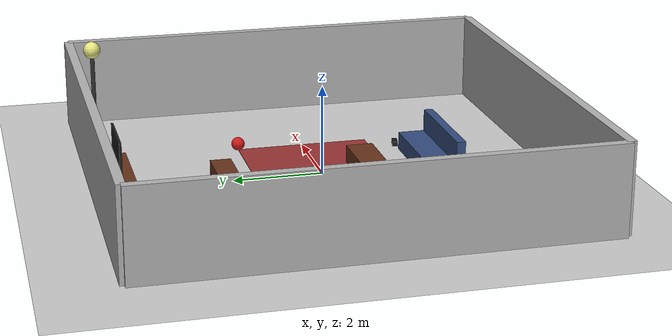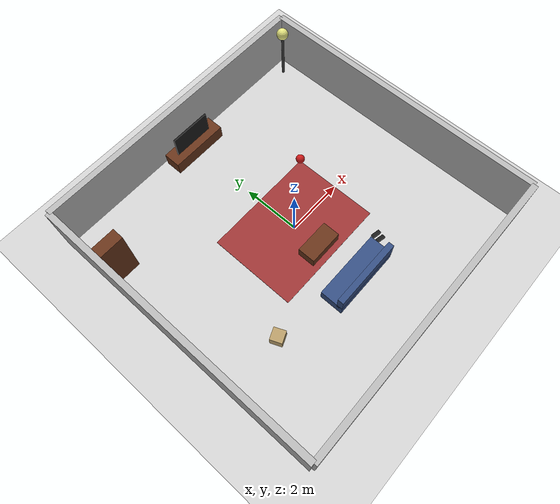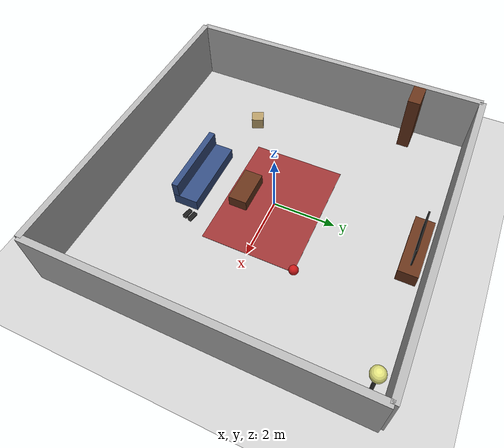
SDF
<?xml version="1.0" ?>
<sdf version="1.7">
  <world name="primitive_living_room">
    <plugin filename="gz-sim-physics-system" name="gz::sim::systems::Physics"></plugin>
    <plugin filename="gz-sim-user-commands-system" name="gz::sim::systems::UserCommands"></plugin>
    <plugin filename="gz-sim-scene-broadcaster-system" name="gz::sim::systems::SceneBroadcaster"></plugin>
    <plugin filename="gz-sim-sensors-system" name="gz::sim::systems::Sensors">
      <render_engine>ogre2</render_engine>
    </plugin>
    <scene>
      <ambient>1.0 1.0 1.0 1</ambient>
      <background>0.5 0.5 0.5 1</background>
      <shadows>true</shadows>
    </scene>

    <light type="directional" name="sun">
      <cast_shadows>true</cast_shadows>
      <pose>0 0 10 0 0 0</pose>
      <diffuse>0.8 0.8 0.8 1</diffuse>
      <specular>0.2 0.2 0.2 1</specular>
      <direction>-0.5 0.1 -0.9</direction>
    </light>

    <model name="ground_plane">
      <static>true</static>
      <link name="link">
        <collision name="collision"><geometry><plane><normal>0 0 1</normal><size>20 20</size></plane></geometry></collision>
        <visual name="visual">
          <geometry><plane><normal>0 0 1</normal><size>20 20</size></plane></geometry>
          <material><ambient>0.8 0.8 0.8 1</ambient><diffuse>0.8 0.8 0.8 1</diffuse></material>
        </visual>
      </link>
    </model>

    <model name="walls">
      <static>true</static>
      <link name="link">
        <collision name="n_col"><pose>0 5 1 0 0 0</pose><geometry><box><size>10 0.2 2</size></box></geometry></collision>
        <visual name="n_vis"><pose>0 5 1 0 0 0</pose><geometry><box><size>10 0.2 2</size></box></geometry><material><ambient>0.7 0.7 0.7 1</ambient><diffuse>0.7 0.7 0.7 1</diffuse></material></visual>
        <collision name="s_col"><pose>0 -5 1 0 0 0</pose><geometry><box><size>10 0.2 2</size></box></geometry></collision>
        <visual name="s_vis"><pose>0 -5 1 0 0 0</pose><geometry><box><size>10 0.2 2</size></box></geometry><material><ambient>0.7 0.7 0.7 1</ambient><diffuse>0.7 0.7 0.7 1</diffuse></material></visual>
        <collision name="e_col"><pose>5 0 1 0 0 0</pose><geometry><box><size>0.2 10 2</size></box></geometry></collision>
        <visual name="e_vis"><pose>5 0 1 0 0 0</pose><geometry><box><size>0.2 10 2</size></box></geometry><material><ambient>0.7 0.7 0.7 1</ambient><diffuse>0.7 0.7 0.7 1</diffuse></material></visual>
        <collision name="w_col"><pose>-5 0 1 0 0 0</pose><geometry><box><size>0.2 10 2</size></box></geometry></collision>
        <visual name="w_vis"><pose>-5 0 1 0 0 0</pose><geometry><box><size>0.2 10 2</size></box></geometry><material><ambient>0.7 0.7 0.7 1</ambient><diffuse>0.7 0.7 0.7 1</diffuse></material></visual>
      </link>
    </model>

    <model name="rug">
      <static>true</static>
      <pose>0 0 0.005 0 0 0</pose>
      <link name="link">
        <visual name="visual">
          <geometry><box><size>4 3 0.01</size></box></geometry>
          <material><ambient>0.6 0.2 0.2 1</ambient><diffuse>0.6 0.2 0.2 1</diffuse></material>
        </visual>
      </link>
    </model>

    <model name="sofa">
      <static>true</static>
      <pose>0 -2.5 0 0 0 0</pose>
      <link name="link">
        <collision name="seat_col"><pose>0 0 0.2 0 0 0</pose><geometry><box><size>2.4 0.8 0.4</size></box></geometry></collision>
        <visual name="seat_vis"><pose>0 0 0.2 0 0 0</pose><geometry><box><size>2.4 0.8 0.4</size></box></geometry><material><ambient>0.2 0.3 0.5 1</ambient><diffuse>0.2 0.3 0.5 1</diffuse></material></visual>

        <collision name="back_col"><pose>0 -0.3 0.6 0 0 0</pose><geometry><box><size>2.4 0.2 0.6</size></box></geometry></collision>
        <visual name="back_vis"><pose>0 -0.3 0.6 0 0 0</pose><geometry><box><size>2.4 0.2 0.6</size></box></geometry><material><ambient>0.2 0.3 0.5 1</ambient><diffuse>0.2 0.3 0.5 1</diffuse></material></visual>
      </link>
    </model>

    <model name="coffee_table">
      <static>true</static>
      <pose>0 -1.0 0.2 0 0 0</pose>
      <link name="link">
        <collision name="col"><geometry><box><size>1.2 0.6 0.4</size></box></geometry></collision>
        <visual name="vis">
          <geometry><box><size>1.2 0.6 0.4</size></box></geometry>
          <material><ambient>0.4 0.2 0.1 1</ambient><diffuse>0.4 0.2 0.1 1</diffuse></material>
        </visual>
      </link>
    </model>

    <model name="tv_unit">
      <static>true</static>
      <pose>0 4.5 0 0 0 0</pose>
      <link name="link">
        <collision name="stand_col"><pose>0 0 0.25 0 0 0</pose><geometry><box><size>2 0.6 0.5</size></box></geometry></collision>
        <visual name="stand_vis"><pose>0 0 0.25 0 0 0</pose><geometry><box><size>2 0.6 0.5</size></box></geometry><material><ambient>0.4 0.2 0.1 1</ambient><diffuse>0.4 0.2 0.1 1</diffuse></material></visual>

        <collision name="tv_col"><pose>0 0 0.9 0 0 0</pose><geometry><box><size>1.4 0.05 0.8</size></box></geometry></collision>
        <visual name="tv_vis"><pose>0 0 0.9 0 0 0</pose><geometry><box><size>1.4 0.05 0.8</size></box></geometry><material><ambient>0.1 0.1 0.1 1</ambient><diffuse>0.1 0.1 0.1 1</diffuse></material></visual>
      </link>
    </model>

    <model name="bookshelf">
      <static>true</static>
      <pose>-4.5 3 1.0 0 0 0</pose>
      <link name="link">
        <collision name="col"><geometry><box><size>0.8 0.4 2.0</size></box></geometry></collision>
        <visual name="vis">
          <geometry><box><size>0.8 0.4 2.0</size></box></geometry>
          <material><ambient>0.4 0.2 0.1 1</ambient><diffuse>0.4 0.2 0.1 1</diffuse></material>
        </visual>
      </link>
    </model>

    <model name="floor_lamp">
      <static>true</static>
      <pose>4.5 4.5 0 0 0 0</pose>
      <link name="link">
        <collision name="pole_col"><pose>0 0 0.9 0 0 0</pose><geometry><cylinder><radius>0.05</radius><length>1.8</length></cylinder></geometry></collision>
        <visual name="pole_vis"><pose>0 0 0.9 0 0 0</pose><geometry><cylinder><radius>0.05</radius><length>1.8</length></cylinder></geometry><material><ambient>0.2 0.2 0.2 1</ambient><diffuse>0.2 0.2 0.2 1</diffuse></material></visual>

        <collision name="head_col"><pose>0 0 1.9 0 0 0</pose><geometry><sphere><radius>0.2</radius></sphere></geometry></collision>
        <visual name="head_vis"><pose>0 0 1.9 0 0 0</pose><geometry><sphere><radius>0.2</radius></sphere></geometry><material><ambient>0.9 0.9 0.5 1</ambient><diffuse>0.9 0.9 0.5 1</diffuse></material></visual>
      </link>
    </model>

    <model name="toy_ball">
      <static>false</static> <pose>2 1.5 0.15 0 0 0</pose>
      <link name="link">
        <collision name="col"><geometry><sphere><radius>0.15</radius></sphere></geometry></collision>
        <visual name="vis">
          <geometry><sphere><radius>0.15</radius></sphere></geometry>
          <material><ambient>0.8 0.1 0.1 1</ambient><diffuse>0.8 0.1 0.1 1</diffuse></material> </visual>
        <inertial>
          <mass>0.5</mass>
          <inertia><ixx>0.004</ixx><iyy>0.004</iyy><izz>0.004</izz></inertia>
        </inertial>
      </link>
    </model>

    <model name="cardboard_box">
      <static>true</static>
      <pose>-3 -2 0.2 0 0 0.4</pose> <link name="link">
        <collision name="col"><geometry><box><size>0.4 0.4 0.4</size></box></geometry></collision>
        <visual name="vis">
          <geometry><box><size>0.4 0.4 0.4</size></box></geometry>
          <material><ambient>0.7 0.6 0.4 1</ambient><diffuse>0.7 0.6 0.4 1</diffuse></material> </visual>
      </link>
    </model>

    <model name="shoes">
      <static>true</static>
      <pose>1.5 -2.2 0.05 0 0 -0.2</pose>
      <link name="link">
        <collision name="shoe1_col"><pose>0 0.1 0 0 0 0</pose><geometry><box><size>0.3 0.12 0.1</size></box></geometry></collision>
        <visual name="shoe1_vis"><pose>0 0.1 0 0 0 0</pose><geometry><box><size>0.3 0.12 0.1</size></box></geometry><material><ambient>0.1 0.1 0.1 1</ambient><diffuse>0.1 0.1 0.1 1</diffuse></material></visual>
        <collision name="shoe2_col"><pose>0 -0.1 0 0 0 0</pose><geometry><box><size>0.3 0.12 0.1</size></box></geometry></collision>
        <visual name="shoe2_vis"><pose>0 -0.1 0 0 0 0</pose><geometry><box><size>0.3 0.12 0.1</size></box></geometry><material><ambient>0.1 0.1 0.1 1</ambient><diffuse>0.1 0.1 0.1 1</diffuse></material></visual>
      </link>
    </model>

  </world>
</sdf>
